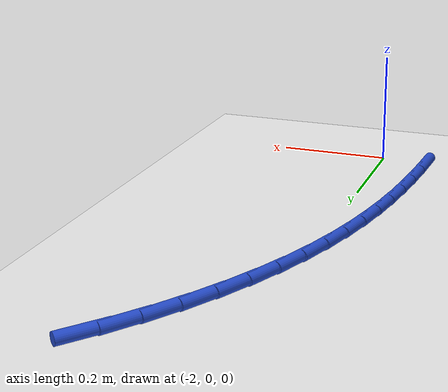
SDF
<sdf version="1.6">
 <world name="default">
  <model name="ground_plane">
   <static>1</static>
   <link name="link">
    <collision name="collision">
     <geometry><plane><normal>0 0 1</normal><size>100 100</size></plane></geometry>
     <surface><friction><ode><mu>100</mu><mu2>50</mu2></ode></friction></surface>
    </collision>
    <visual name="visual">
     <cast_shadows>0</cast_shadows>
     <geometry><plane><normal>0 0 1</normal><size>100 100</size></plane></geometry>
     <material>
      <script><uri>file://media/materials/scripts/gazebo.material</uri><name>Gazebo/WhiteGlow</name></script>
     </material>
    </visual>
   </link>
  </model>
  <model name="line">
   <link name="link_44">
    <pose>-1.8063917236644802 0.8164386289583438 0.01 0 1.57 0.870685048781061</pose>
    <collision name="collision">
     <geometry><cylinder><radius>0.01</radius><length>0.08</length></cylinder></geometry>
    </collision>
    <visual name="visual">
     <material>
      <script><name>Gazebo/Blue</name><uri>file://media/materials/scripts/gazebo.material</uri></script>
     </material>
     <geometry><cylinder><radius>0.01</radius><length>0.08</length></cylinder></geometry>
    </visual>
   </link>
   <link name="link_45">
    <pose>-1.8438776172090174 0.7719438577617755 0.01 0 1.57 0.9322657306646028</pose>
    <collision name="collision">
     <geometry><cylinder><radius>0.01</radius><length>0.08</length></cylinder></geometry>
    </collision>
    <visual name="visual">
     <material>
      <script><name>Gazebo/Blue</name><uri>file://media/materials/scripts/gazebo.material</uri></script>
     </material>
     <geometry><cylinder><radius>0.01</radius><length>0.08</length></cylinder></geometry>
    </visual>
   </link>
   <link name="link_46">
    <pose>-1.8787724117244067 0.7249324550322573 0.01 0 1.57 0.9902121623923539</pose>
    <collision name="collision">
     <geometry><cylinder><radius>0.01</radius><length>0.08</length></cylinder></geometry>
    </collision>
    <visual name="visual">
     <material>
      <script><name>Gazebo/Blue</name><uri>file://media/materials/scripts/gazebo.material</uri></script>
     </material>
     <geometry><cylinder><radius>0.01</radius><length>0.08</length></cylinder></geometry>
    </visual>
   </link>
   <link name="link_47">
    <pose>-1.910938223402746 0.6758994808084116 0.01 0 1.57 1.0455908540769683</pose>
    <collision name="collision">
     <geometry><cylinder><radius>0.01</radius><length>0.08</length></cylinder></geometry>
    </collision>
    <visual name="visual">
     <material>
      <script><name>Gazebo/Blue</name><uri>file://media/materials/scripts/gazebo.material</uri></script>
     </material>
     <geometry><cylinder><radius>0.01</radius><length>0.08</length></cylinder></geometry>
    </visual>
   </link>
   <link name="link_48">
    <pose>-1.940237168436133 0.6253399951288608 0.01 0 1.57 1.0994451140133625</pose>
    <collision name="collision">
     <geometry><cylinder><radius>0.01</radius><length>0.08</length></cylinder></geometry>
    </collision>
    <visual name="visual">
     <material>
      <script><name>Gazebo/Blue</name><uri>file://media/materials/scripts/gazebo.material</uri></script>
     </material>
     <geometry><cylinder><radius>0.01</radius><length>0.08</length></cylinder></geometry>
    </visual>
   </link>
   <link name="link_49">
    <pose>-1.9665313630166652 0.5737490580322284 0.01 0 1.57 1.152801189557245</pose>
    <collision name="collision">
     <geometry><cylinder><radius>0.01</radius><length>0.08</length></cylinder></geometry>
    </collision>
    <visual name="visual">
     <material>
      <script><name>Gazebo/Blue</name><uri>file://media/materials/scripts/gazebo.material</uri></script>
     </material>
     <geometry><cylinder><radius>0.01</radius><length>0.08</length></cylinder></geometry>
    </visual>
   </link>
   <link name="link_50">
    <pose>-1.98968796650473 0.5216145079782336 0.01 0 1.57 1.2054901027416856</pose>
    <collision name="collision">
     <geometry><cylinder><radius>0.01</radius><length>0.08</length></cylinder></geometry>
    </collision>
    <visual name="visual">
     <material>
      <script><name>Gazebo/Blue</name><uri>file://media/materials/scripts/gazebo.material</uri></script>
     </material>
     <geometry><cylinder><radius>0.01</radius><length>0.08</length></cylinder></geometry>
    </visual>
   </link>
   <link name="link_51">
    <pose>-2.0097404381431425 0.4691860498460168 0.01 0 1.57 1.2559605097455533</pose>
    <collision name="collision">
     <geometry><cylinder><radius>0.01</radius><length>0.08</length></cylinder></geometry>
    </collision>
    <visual name="visual">
     <material>
      <script><name>Gazebo/Blue</name><uri>file://media/materials/scripts/gazebo.material</uri></script>
     </material>
     <geometry><cylinder><radius>0.01</radius><length>0.08</length></cylinder></geometry>
    </visual>
   </link>
   <link name="link_52">
    <pose>-2.0269224757727913 0.4164266562955942 0.01 0 1.57 1.3034363677008531</pose>
    <collision name="collision">
     <geometry><cylinder><radius>0.01</radius><length>0.08</length></cylinder></geometry>
    </collision>
    <visual name="visual">
     <material>
      <script><name>Gazebo/Blue</name><uri>file://media/materials/scripts/gazebo.material</uri></script>
     </material>
     <geometry><cylinder><radius>0.01</radius><length>0.08</length></cylinder></geometry>
    </visual>
   </link>
   <link name="link_53">
    <pose>-2.0414796816199865 0.36328225346905824 0.01 0 1.57 1.3473212997106288</pose>
    <collision name="collision">
     <geometry><cylinder><radius>0.01</radius><length>0.08</length></cylinder></geometry>
    </collision>
    <visual name="visual">
     <material>
      <script><name>Gazebo/Blue</name><uri>file://media/materials/scripts/gazebo.material</uri></script>
     </material>
     <geometry><cylinder><radius>0.01</radius><length>0.08</length></cylinder></geometry>
    </visual>
   </link>
   <link name="link_54">
    <pose>-2.053657657911045 0.3096987675085001 0.01 0 1.57 1.38714640345573</pose>
    <collision name="collision">
     <geometry><cylinder><radius>0.01</radius><length>0.08</length></cylinder></geometry>
    </collision>
    <visual name="visual">
     <material>
      <script><name>Gazebo/Blue</name><uri>file://media/materials/scripts/gazebo.material</uri></script>
     </material>
     <geometry><cylinder><radius>0.01</radius><length>0.08</length></cylinder></geometry>
    </visual>
   </link>
   <link name="link_55">
    <pose>-2.0637020068722793 0.25562212455601235 0.01 0 1.57 1.4225735052983275</pose>
    <collision name="collision">
     <geometry><cylinder><radius>0.01</radius><length>0.08</length></cylinder></geometry>
    </collision>
    <visual name="visual">
     <material>
      <script><name>Gazebo/Blue</name><uri>file://media/materials/scripts/gazebo.material</uri></script>
     </material>
     <geometry><cylinder><radius>0.01</radius><length>0.08</length></cylinder></geometry>
    </visual>
   </link>
   <link name="link_56">
    <pose>-2.0718583307300036 0.20099825075368624 0.01 0 1.57 1.4533871589609386</pose>
    <collision name="collision">
     <geometry><cylinder><radius>0.01</radius><length>0.08</length></cylinder></geometry>
    </collision>
    <visual name="visual">
     <material>
      <script><name>Gazebo/Blue</name><uri>file://media/materials/scripts/gazebo.material</uri></script>
     </material>
     <geometry><cylinder><radius>0.01</radius><length>0.08</length></cylinder></geometry>
    </visual>
   </link>
   <link name="link_57">
    <pose>-2.0783722317105324 0.14577307224361427 0.01 0 1.57 1.4794792527864882</pose>
    <collision name="collision">
     <geometry><cylinder><radius>0.01</radius><length>0.08</length></cylinder></geometry>
    </collision>
    <visual name="visual">
     <material>
      <script><name>Gazebo/Blue</name><uri>file://media/materials/scripts/gazebo.material</uri></script>
     </material>
     <geometry><cylinder><radius>0.01</radius><length>0.08</length></cylinder></geometry>
    </visual>
   </link>
   <link name="link_58">
    <pose>-2.0834893120401796 0.08989251516788775 0.01 0 1.57 1.500830139382366</pose>
    <collision name="collision">
     <geometry><cylinder><radius>0.01</radius><length>0.08</length></cylinder></geometry>
    </collision>
    <visual name="visual">
     <material>
      <script><name>Gazebo/Blue</name><uri>file://media/materials/scripts/gazebo.material</uri></script>
     </material>
     <geometry><cylinder><radius>0.01</radius><length>0.08</length></cylinder></geometry>
    </visual>
   </link>
   <link name="link_59">
    <pose>-2.0874551726186144 0.03330250653690065 0.01 0 1.57 1.5192311642146874</pose>
    <collision name="collision">
     <geometry><cylinder><radius>0.01</radius><length>0.08</length></cylinder></geometry>
    </collision>
    <visual name="visual">
     <material>
      <script><name>Gazebo/Blue</name><uri>file://media/materials/scripts/gazebo.material</uri></script>
     </material>
     <geometry><cylinder><radius>0.01</radius><length>0.08</length></cylinder></geometry>
    </visual>
   </link>
  </model>
 </world>
</sdf>
